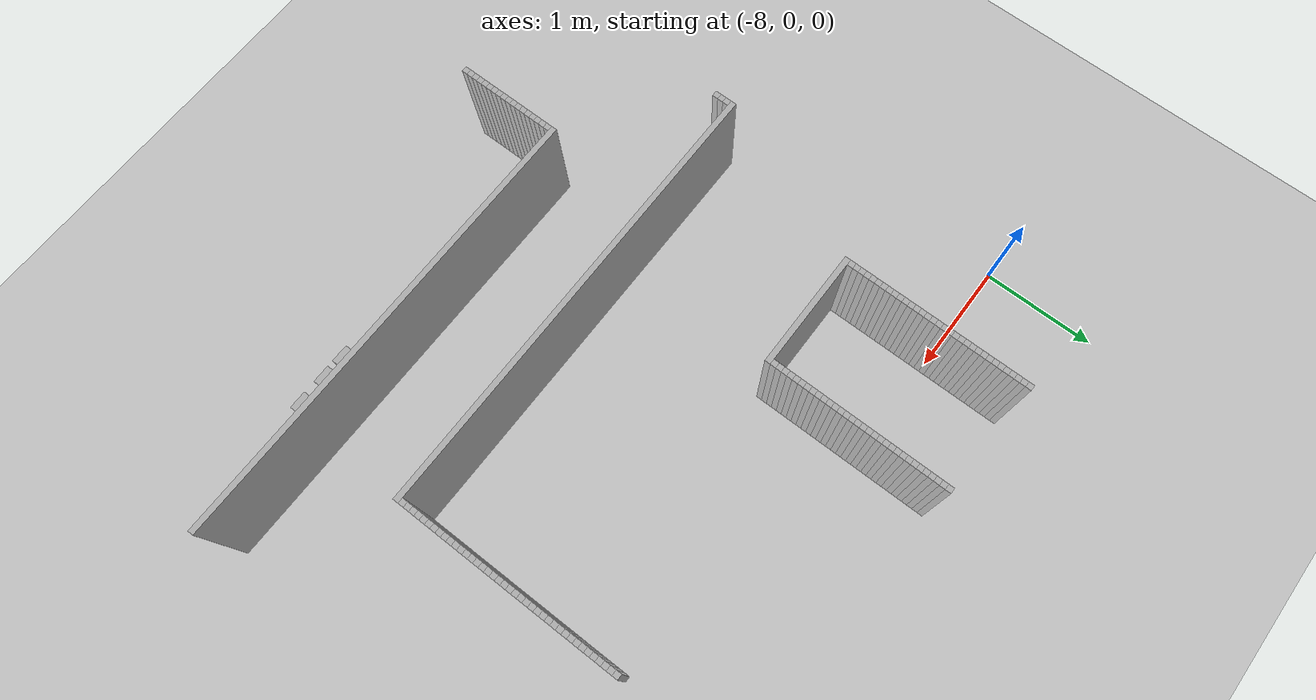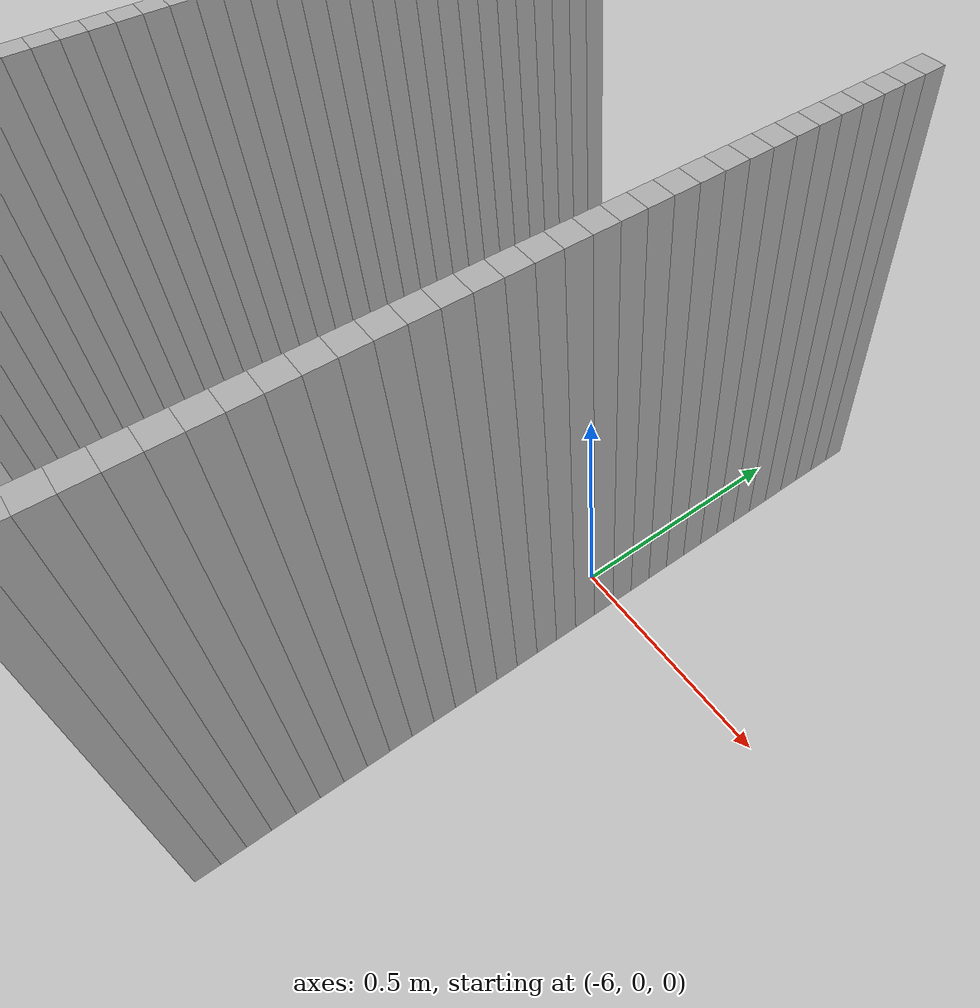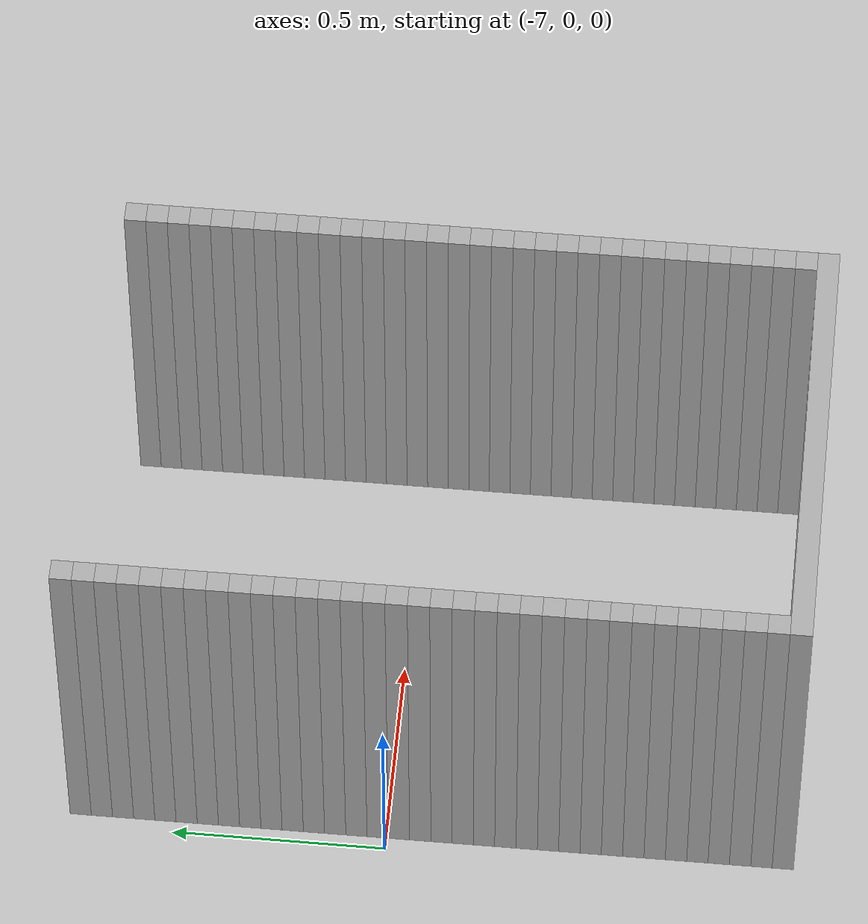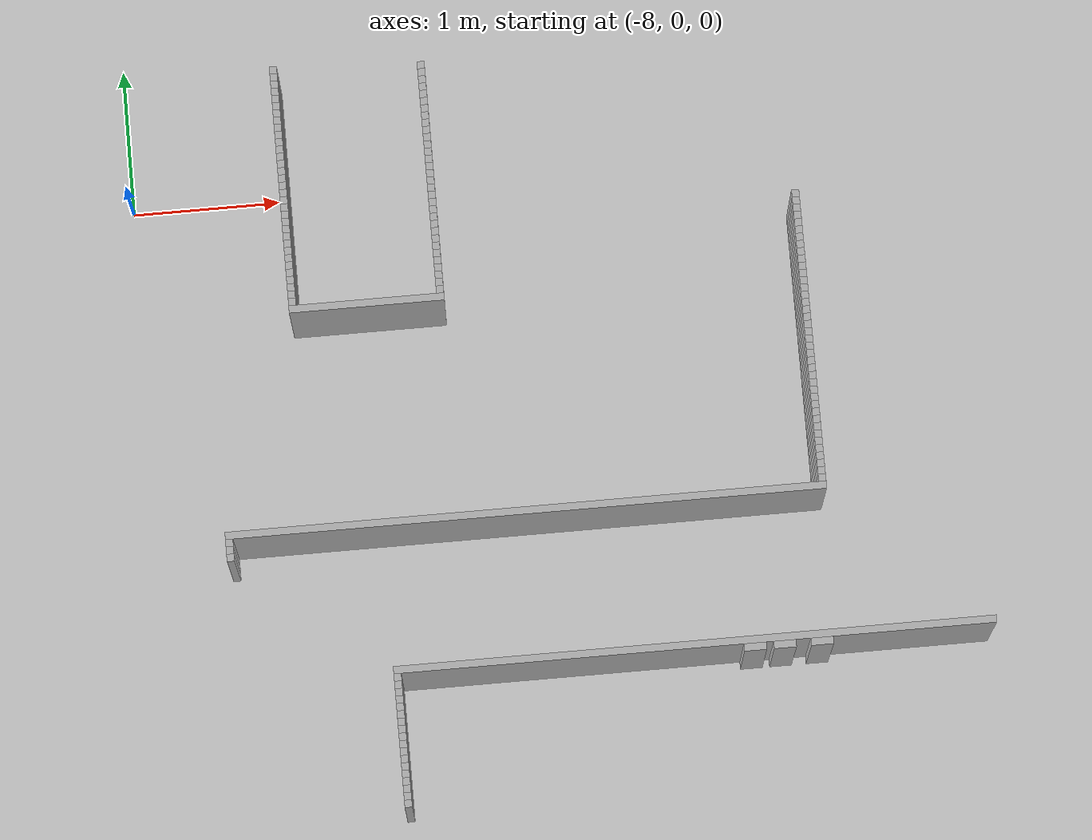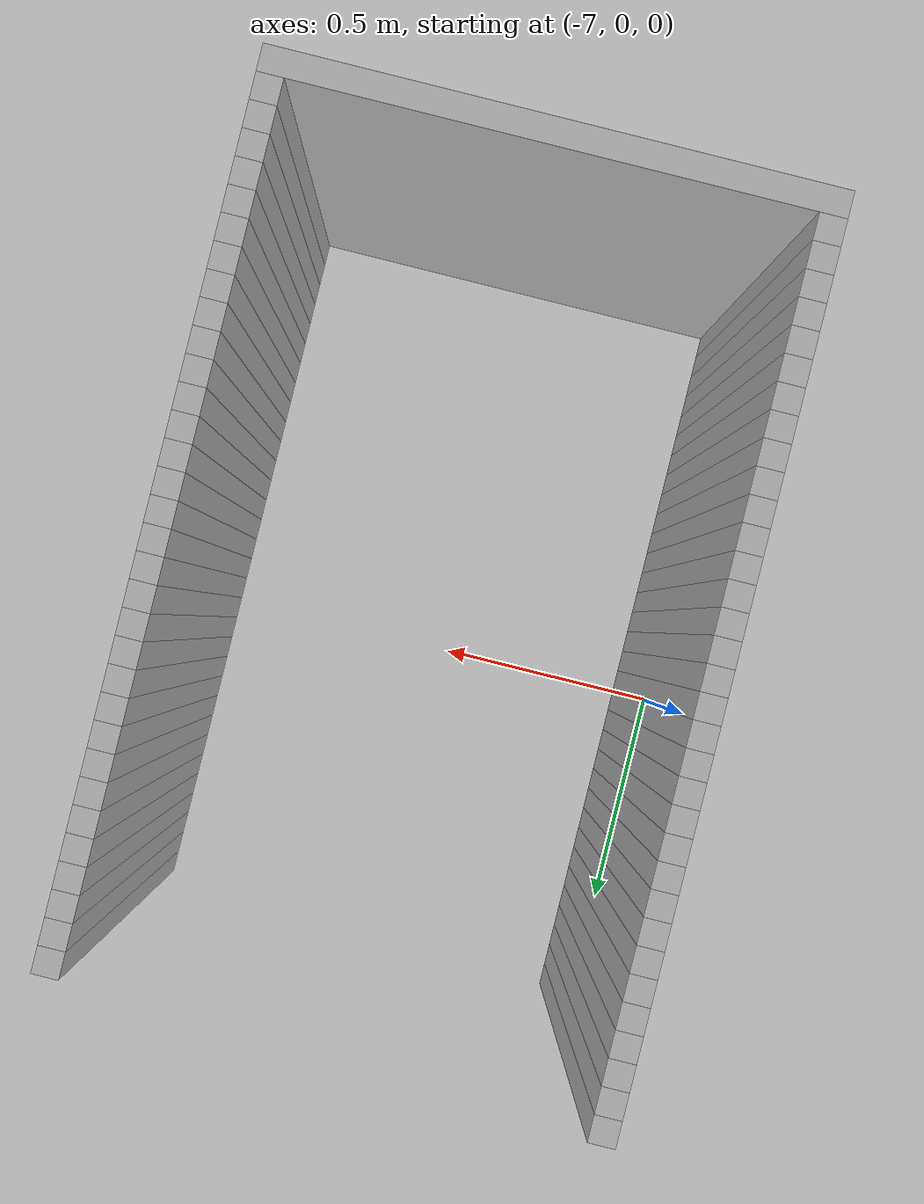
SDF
<sdf version="1.6">
 <world name="udh1_world">
  <include><uri>model://ground_plane</uri></include>
  <include><uri>model://sun</uri></include>
  <model name="wall_1353">
   <static>true</static>
   <pose>-6.944999999999999 0.7200000000000006 0.5 0 0 0</pose>
   <link name="link">
    <collision name="col"><geometry><box><size>0.05 0.05 1</size></box></geometry></collision>
    <visual name="vis"><geometry><box><size>0.05 0.05 1</size></box></geometry></visual>
   </link>
  </model>
  <model name="wall_1361">
   <static>true</static>
   <pose>-6.944999999999999 0.6699999999999999 0.5 0 0 0</pose>
   <link name="link">
    <collision name="col"><geometry><box><size>0.05 0.05 1</size></box></geometry></collision>
    <visual name="vis"><geometry><box><size>0.05 0.05 1</size></box></geometry></visual>
   </link>
  </model>
  <model name="wall_1362">
   <static>true</static>
   <pose>-5.944999999999999 0.6699999999999999 0.5 0 0 0</pose>
   <link name="link">
    <collision name="col"><geometry><box><size>0.05 0.05 1</size></box></geometry></collision>
    <visual name="vis"><geometry><box><size>0.05 0.05 1</size></box></geometry></visual>
   </link>
  </model>
  <model name="wall_1369">
   <static>true</static>
   <pose>-6.944999999999999 0.6199999999999992 0.5 0 0 0</pose>
   <link name="link">
    <collision name="col"><geometry><box><size>0.05 0.05 1</size></box></geometry></collision>
    <visual name="vis"><geometry><box><size>0.05 0.05 1</size></box></geometry></visual>
   </link>
  </model>
  <model name="wall_1370">
   <static>true</static>
   <pose>-5.944999999999999 0.6199999999999992 0.5 0 0 0</pose>
   <link name="link">
    <collision name="col"><geometry><box><size>0.05 0.05 1</size></box></geometry></collision>
    <visual name="vis"><geometry><box><size>0.05 0.05 1</size></box></geometry></visual>
   </link>
  </model>
  <model name="wall_1376">
   <static>true</static>
   <pose>-6.944999999999999 0.5700000000000003 0.5 0 0 0</pose>
   <link name="link">
    <collision name="col"><geometry><box><size>0.05 0.05 1</size></box></geometry></collision>
    <visual name="vis"><geometry><box><size>0.05 0.05 1</size></box></geometry></visual>
   </link>
  </model>
  <model name="wall_1377">
   <static>true</static>
   <pose>-5.944999999999999 0.5700000000000003 0.5 0 0 0</pose>
   <link name="link">
    <collision name="col"><geometry><box><size>0.05 0.05 1</size></box></geometry></collision>
    <visual name="vis"><geometry><box><size>0.05 0.05 1</size></box></geometry></visual>
   </link>
  </model>
  <model name="wall_1383">
   <static>true</static>
   <pose>-6.944999999999999 0.5199999999999996 0.5 0 0 0</pose>
   <link name="link">
    <collision name="col"><geometry><box><size>0.05 0.05 1</size></box></geometry></collision>
    <visual name="vis"><geometry><box><size>0.05 0.05 1</size></box></geometry></visual>
   </link>
  </model>
  <model name="wall_1384">
   <static>true</static>
   <pose>-5.944999999999999 0.5199999999999996 0.5 0 0 0</pose>
   <link name="link">
    <collision name="col"><geometry><box><size>0.05 0.05 1</size></box></geometry></collision>
    <visual name="vis"><geometry><box><size>0.05 0.05 1</size></box></geometry></visual>
   </link>
  </model>
  <model name="wall_1389">
   <static>true</static>
   <pose>-6.944999999999999 0.47000000000000064 0.5 0 0 0</pose>
   <link name="link">
    <collision name="col"><geometry><box><size>0.05 0.05 1</size></box></geometry></collision>
    <visual name="vis"><geometry><box><size>0.05 0.05 1</size></box></geometry></visual>
   </link>
  </model>
  <model name="wall_1390">
   <static>true</static>
   <pose>-5.944999999999999 0.47000000000000064 0.5 0 0 0</pose>
   <link name="link">
    <collision name="col"><geometry><box><size>0.05 0.05 1</size></box></geometry></collision>
    <visual name="vis"><geometry><box><size>0.05 0.05 1</size></box></geometry></visual>
   </link>
  </model>
  <model name="wall_1396">
   <static>true</static>
   <pose>-6.944999999999999 0.41999999999999993 0.5 0 0 0</pose>
   <link name="link">
    <collision name="col"><geometry><box><size>0.05 0.05 1</size></box></geometry></collision>
    <visual name="vis"><geometry><box><size>0.05 0.05 1</size></box></geometry></visual>
   </link>
  </model>
  <model name="wall_1397">
   <static>true</static>
   <pose>-5.944999999999999 0.41999999999999993 0.5 0 0 0</pose>
   <link name="link">
    <collision name="col"><geometry><box><size>0.05 0.05 1</size></box></geometry></collision>
    <visual name="vis"><geometry><box><size>0.05 0.05 1</size></box></geometry></visual>
   </link>
  </model>
  <model name="wall_1403">
   <static>true</static>
   <pose>-6.944999999999999 0.3699999999999992 0.5 0 0 0</pose>
   <link name="link">
    <collision name="col"><geometry><box><size>0.05 0.05 1</size></box></geometry></collision>
    <visual name="vis"><geometry><box><size>0.05 0.05 1</size></box></geometry></visual>
   </link>
  </model>
  <model name="wall_1404">
   <static>true</static>
   <pose>-5.944999999999999 0.3699999999999992 0.5 0 0 0</pose>
   <link name="link">
    <collision name="col"><geometry><box><size>0.05 0.05 1</size></box></geometry></collision>
    <visual name="vis"><geometry><box><size>0.05 0.05 1</size></box></geometry></visual>
   </link>
  </model>
  <model name="wall_1410">
   <static>true</static>
   <pose>-6.944999999999999 0.3200000000000003 0.5 0 0 0</pose>
   <link name="link">
    <collision name="col"><geometry><box><size>0.05 0.05 1</size></box></geometry></collision>
    <visual name="vis"><geometry><box><size>0.05 0.05 1</size></box></geometry></visual>
   </link>
  </model>
  <model name="wall_1411">
   <static>true</static>
   <pose>-5.944999999999999 0.3200000000000003 0.5 0 0 0</pose>
   <link name="link">
    <collision name="col"><geometry><box><size>0.05 0.05 1</size></box></geometry></collision>
    <visual name="vis"><geometry><box><size>0.05 0.05 1</size></box></geometry></visual>
   </link>
  </model>
  <model name="wall_1417">
   <static>true</static>
   <pose>-6.944999999999999 0.2699999999999996 0.5 0 0 0</pose>
   <link name="link">
    <collision name="col"><geometry><box><size>0.05 0.05 1</size></box></geometry></collision>
    <visual name="vis"><geometry><box><size>0.05 0.05 1</size></box></geometry></visual>
   </link>
  </model>
  <model name="wall_1418">
   <static>true</static>
   <pose>-5.944999999999999 0.2699999999999996 0.5 0 0 0</pose>
   <link name="link">
    <collision name="col"><geometry><box><size>0.05 0.05 1</size></box></geometry></collision>
    <visual name="vis"><geometry><box><size>0.05 0.05 1</size></box></geometry></visual>
   </link>
  </model>
  <model name="wall_1424">
   <static>true</static>
   <pose>-6.944999999999999 0.21999999999999886 0.5 0 0 0</pose>
   <link name="link">
    <collision name="col"><geometry><box><size>0.05 0.05 1</size></box></geometry></collision>
    <visual name="vis"><geometry><box><size>0.05 0.05 1</size></box></geometry></visual>
   </link>
  </model>
  <model name="wall_1425">
   <static>true</static>
   <pose>-5.944999999999999 0.21999999999999886 0.5 0 0 0</pose>
   <link name="link">
    <collision name="col"><geometry><box><size>0.05 0.05 1</size></box></geometry></collision>
    <visual name="vis"><geometry><box><size>0.05 0.05 1</size></box></geometry></visual>
   </link>
  </model>
  <model name="wall_1431">
   <static>true</static>
   <pose>-6.944999999999999 0.16999999999999993 0.5 0 0 0</pose>
   <link name="link">
    <collision name="col"><geometry><box><size>0.05 0.05 1</size></box></geometry></collision>
    <visual name="vis"><geometry><box><size>0.05 0.05 1</size></box></geometry></visual>
   </link>
  </model>
  <model name="wall_1432">
   <static>true</static>
   <pose>-5.944999999999999 0.16999999999999993 0.5 0 0 0</pose>
   <link name="link">
    <collision name="col"><geometry><box><size>0.05 0.05 1</size></box></geometry></collision>
    <visual name="vis"><geometry><box><size>0.05 0.05 1</size></box></geometry></visual>
   </link>
  </model>
  <model name="wall_1438">
   <static>true</static>
   <pose>-6.944999999999999 0.11999999999999922 0.5 0 0 0</pose>
   <link name="link">
    <collision name="col"><geometry><box><size>0.05 0.05 1</size></box></geometry></collision>
    <visual name="vis"><geometry><box><size>0.05 0.05 1</size></box></geometry></visual>
   </link>
  </model>
  <model name="wall_1439">
   <static>true</static>
   <pose>-5.944999999999999 0.11999999999999922 0.5 0 0 0</pose>
   <link name="link">
    <collision name="col"><geometry><box><size>0.05 0.05 1</size></box></geometry></collision>
    <visual name="vis"><geometry><box><size>0.05 0.05 1</size></box></geometry></visual>
   </link>
  </model>
  <model name="wall_1445">
   <static>true</static>
   <pose>-6.944999999999999 0.07000000000000028 0.5 0 0 0</pose>
   <link name="link">
    <collision name="col"><geometry><box><size>0.05 0.05 1</size></box></geometry></collision>
    <visual name="vis"><geometry><box><size>0.05 0.05 1</size></box></geometry></visual>
   </link>
  </model>
  <model name="wall_1446">
   <static>true</static>
   <pose>-5.944999999999999 0.07000000000000028 0.5 0 0 0</pose>
   <link name="link">
    <collision name="col"><geometry><box><size>0.05 0.05 1</size></box></geometry></collision>
    <visual name="vis"><geometry><box><size>0.05 0.05 1</size></box></geometry></visual>
   </link>
  </model>
  <model name="wall_1454">
   <static>true</static>
   <pose>-6.944999999999999 0.019999999999999574 0.5 0 0 0</pose>
   <link name="link">
    <collision name="col"><geometry><box><size>0.05 0.05 1</size></box></geometry></collision>
    <visual name="vis"><geometry><box><size>0.05 0.05 1</size></box></geometry></visual>
   </link>
  </model>
  <model name="wall_1455">
   <static>true</static>
   <pose>-5.944999999999999 0.019999999999999574 0.5 0 0 0</pose>
   <link name="link">
    <collision name="col"><geometry><box><size>0.05 0.05 1</size></box></geometry></collision>
    <visual name="vis"><geometry><box><size>0.05 0.05 1</size></box></geometry></visual>
   </link>
  </model>
  <model name="wall_1469">
   <static>true</static>
   <pose>-6.944999999999999 -0.030000000000001137 0.5 0 0 0</pose>
   <link name="link">
    <collision name="col"><geometry><box><size>0.05 0.05 1</size></box></geometry></collision>
    <visual name="vis"><geometry><box><size>0.05 0.05 1</size></box></geometry></visual>
   </link>
  </model>
  <model name="wall_1470">
   <static>true</static>
   <pose>-5.944999999999999 -0.030000000000001137 0.5 0 0 0</pose>
   <link name="link">
    <collision name="col"><geometry><box><size>0.05 0.05 1</size></box></geometry></collision>
    <visual name="vis"><geometry><box><size>0.05 0.05 1</size></box></geometry></visual>
   </link>
  </model>
  <model name="wall_1476">
   <static>true</static>
   <pose>-6.944999999999999 -0.08000000000000007 0.5 0 0 0</pose>
   <link name="link">
    <collision name="col"><geometry><box><size>0.05 0.05 1</size></box></geometry></collision>
    <visual name="vis"><geometry><box><size>0.05 0.05 1</size></box></geometry></visual>
   </link>
  </model>
  <model name="wall_1477">
   <static>true</static>
   <pose>-5.944999999999999 -0.08000000000000007 0.5 0 0 0</pose>
   <link name="link">
    <collision name="col"><geometry><box><size>0.05 0.05 1</size></box></geometry></collision>
    <visual name="vis"><geometry><box><size>0.05 0.05 1</size></box></geometry></visual>
   </link>
  </model>
  <model name="wall_1483">
   <static>true</static>
   <pose>-6.944999999999999 -0.13000000000000078 0.5 0 0 0</pose>
   <link name="link">
    <collision name="col"><geometry><box><size>0.05 0.05 1</size></box></geometry></collision>
    <visual name="vis"><geometry><box><size>0.05 0.05 1</size></box></geometry></visual>
   </link>
  </model>
  <model name="wall_1484">
   <static>true</static>
   <pose>-5.944999999999999 -0.13000000000000078 0.5 0 0 0</pose>
   <link name="link">
    <collision name="col"><geometry><box><size>0.05 0.05 1</size></box></geometry></collision>
    <visual name="vis"><geometry><box><size>0.05 0.05 1</size></box></geometry></visual>
   </link>
  </model>
  <model name="wall_1489">
   <static>true</static>
   <pose>-6.944999999999999 -0.17999999999999972 0.5 0 0 0</pose>
   <link name="link">
    <collision name="col"><geometry><box><size>0.05 0.05 1</size></box></geometry></collision>
    <visual name="vis"><geometry><box><size>0.05 0.05 1</size></box></geometry></visual>
   </link>
  </model>
  <model name="wall_1490">
   <static>true</static>
   <pose>-5.944999999999999 -0.17999999999999972 0.5 0 0 0</pose>
   <link name="link">
    <collision name="col"><geometry><box><size>0.05 0.05 1</size></box></geometry></collision>
    <visual name="vis"><geometry><box><size>0.05 0.05 1</size></box></geometry></visual>
   </link>
  </model>
  <model name="wall_1495">
   <static>true</static>
   <pose>-6.944999999999999 -0.23000000000000043 0.5 0 0 0</pose>
   <link name="link">
    <collision name="col"><geometry><box><size>0.05 0.05 1</size></box></geometry></collision>
    <visual name="vis"><geometry><box><size>0.05 0.05 1</size></box></geometry></visual>
   </link>
  </model>
  <model name="wall_1496">
   <static>true</static>
   <pose>-5.944999999999999 -0.23000000000000043 0.5 0 0 0</pose>
   <link name="link">
    <collision name="col"><geometry><box><size>0.05 0.05 1</size></box></geometry></collision>
    <visual name="vis"><geometry><box><size>0.05 0.05 1</size></box></geometry></visual>
   </link>
  </model>
  <model name="wall_1500">
   <static>true</static>
   <pose>-6.944999999999999 -0.28000000000000114 0.5 0 0 0</pose>
   <link name="link">
    <collision name="col"><geometry><box><size>0.05 0.05 1</size></box></geometry></collision>
    <visual name="vis"><geometry><box><size>0.05 0.05 1</size></box></geometry></visual>
   </link>
  </model>
  <model name="wall_1501">
   <static>true</static>
   <pose>-5.944999999999999 -0.28000000000000114 0.5 0 0 0</pose>
   <link name="link">
    <collision name="col"><geometry><box><size>0.05 0.05 1</size></box></geometry></collision>
    <visual name="vis"><geometry><box><size>0.05 0.05 1</size></box></geometry></visual>
   </link>
  </model>
  <model name="wall_1506">
   <static>true</static>
   <pose>-6.944999999999999 -0.33000000000000007 0.5 0 0 0</pose>
   <link name="link">
    <collision name="col"><geometry><box><size>0.05 0.05 1</size></box></geometry></collision>
    <visual name="vis"><geometry><box><size>0.05 0.05 1</size></box></geometry></visual>
   </link>
  </model>
  <model name="wall_1507">
   <static>true</static>
   <pose>-5.944999999999999 -0.33000000000000007 0.5 0 0 0</pose>
   <link name="link">
    <collision name="col"><geometry><box><size>0.05 0.05 1</size></box></geometry></collision>
    <visual name="vis"><geometry><box><size>0.05 0.05 1</size></box></geometry></visual>
   </link>
  </model>
  <model name="wall_1512">
   <static>true</static>
   <pose>-6.944999999999999 -0.3800000000000008 0.5 0 0 0</pose>
   <link name="link">
    <collision name="col"><geometry><box><size>0.05 0.05 1</size></box></geometry></collision>
    <visual name="vis"><geometry><box><size>0.05 0.05 1</size></box></geometry></visual>
   </link>
  </model>
  <model name="wall_1513">
   <static>true</static>
   <pose>-5.944999999999999 -0.3800000000000008 0.5 0 0 0</pose>
   <link name="link">
    <collision name="col"><geometry><box><size>0.05 0.05 1</size></box></geometry></collision>
    <visual name="vis"><geometry><box><size>0.05 0.05 1</size></box></geometry></visual>
   </link>
  </model>
  <model name="wall_1519">
   <static>true</static>
   <pose>-6.944999999999999 -0.4299999999999997 0.5 0 0 0</pose>
   <link name="link">
    <collision name="col"><geometry><box><size>0.05 0.05 1</size></box></geometry></collision>
    <visual name="vis"><geometry><box><size>0.05 0.05 1</size></box></geometry></visual>
   </link>
  </model>
  <model name="wall_1520">
   <static>true</static>
   <pose>-5.944999999999999 -0.4299999999999997 0.5 0 0 0</pose>
   <link name="link">
    <collision name="col"><geometry><box><size>0.05 0.05 1</size></box></geometry></collision>
    <visual name="vis"><geometry><box><size>0.05 0.05 1</size></box></geometry></visual>
   </link>
  </model>
  <model name="wall_1521">
   <static>true</static>
   <pose>-3.494999999999999 -0.4299999999999997 0.5 0 0 0</pose>
   <link name="link">
    <collision name="col"><geometry><box><size>0.05 0.05 1</size></box></geometry></collision>
    <visual name="vis"><geometry><box><size>0.05 0.05 1</size></box></geometry></visual>
   </link>
  </model>
  <model name="wall_1525">
   <static>true</static>
   <pose>-6.944999999999999 -0.4800000000000004 0.5 0 0 0</pose>
   <link name="link">
    <collision name="col"><geometry><box><size>0.05 0.05 1</size></box></geometry></collision>
    <visual name="vis"><geometry><box><size>0.05 0.05 1</size></box></geometry></visual>
   </link>
  </model>
  <model name="wall_1526">
   <static>true</static>
   <pose>-5.944999999999999 -0.4800000000000004 0.5 0 0 0</pose>
   <link name="link">
    <collision name="col"><geometry><box><size>0.05 0.05 1</size></box></geometry></collision>
    <visual name="vis"><geometry><box><size>0.05 0.05 1</size></box></geometry></visual>
   </link>
  </model>
  <model name="wall_1527">
   <static>true</static>
   <pose>-3.494999999999999 -0.4800000000000004 0.5 0 0 0</pose>
   <link name="link">
    <collision name="col"><geometry><box><size>0.05 0.05 1</size></box></geometry></collision>
    <visual name="vis"><geometry><box><size>0.05 0.05 1</size></box></geometry></visual>
   </link>
  </model>
  <model name="wall_1531">
   <static>true</static>
   <pose>-6.944999999999999 -0.5300000000000011 0.5 0 0 0</pose>
   <link name="link">
    <collision name="col"><geometry><box><size>0.05 0.05 1</size></box></geometry></collision>
    <visual name="vis"><geometry><box><size>0.05 0.05 1</size></box></geometry></visual>
   </link>
  </model>
  <model name="wall_1532">
   <static>true</static>
   <pose>-5.944999999999999 -0.5300000000000011 0.5 0 0 0</pose>
   <link name="link">
    <collision name="col"><geometry><box><size>0.05 0.05 1</size></box></geometry></collision>
    <visual name="vis"><geometry><box><size>0.05 0.05 1</size></box></geometry></visual>
   </link>
  </model>
  <model name="wall_1533">
   <static>true</static>
   <pose>-3.494999999999999 -0.5300000000000011 0.5 0 0 0</pose>
   <link name="link">
    <collision name="col"><geometry><box><size>0.05 0.05 1</size></box></geometry></collision>
    <visual name="vis"><geometry><box><size>0.05 0.05 1</size></box></geometry></visual>
   </link>
  </model>
  <model name="wall_1537">
   <static>true</static>
   <pose>-6.944999999999999 -0.5800000000000001 0.5 0 0 0</pose>
   <link name="link">
    <collision name="col"><geometry><box><size>0.05 0.05 1</size></box></geometry></collision>
    <visual name="vis"><geometry><box><size>0.05 0.05 1</size></box></geometry></visual>
   </link>
  </model>
  <model name="wall_1538">
   <static>true</static>
   <pose>-5.944999999999999 -0.5800000000000001 0.5 0 0 0</pose>
   <link name="link">
    <collision name="col"><geometry><box><size>0.05 0.05 1</size></box></geometry></collision>
    <visual name="vis"><geometry><box><size>0.05 0.05 1</size></box></geometry></visual>
   </link>
  </model>
  <model name="wall_1539">
   <static>true</static>
   <pose>-3.494999999999999 -0.5800000000000001 0.5 0 0 0</pose>
   <link name="link">
    <collision name="col"><geometry><box><size>0.05 0.05 1</size></box></geometry></collision>
    <visual name="vis"><geometry><box><size>0.05 0.05 1</size></box></geometry></visual>
   </link>
  </model>
  <model name="wall_1543">
   <static>true</static>
   <pose>-6.944999999999999 -0.6300000000000008 0.5 0 0 0</pose>
   <link name="link">
    <collision name="col"><geometry><box><size>0.05 0.05 1</size></box></geometry></collision>
    <visual name="vis"><geometry><box><size>0.05 0.05 1</size></box></geometry></visual>
   </link>
  </model>
  <model name="wall_1544">
   <static>true</static>
   <pose>-5.944999999999999 -0.6300000000000008 0.5 0 0 0</pose>
   <link name="link">
    <collision name="col"><geometry><box><size>0.05 0.05 1</size></box></geometry></collision>
    <visual name="vis"><geometry><box><size>0.05 0.05 1</size></box></geometry></visual>
   </link>
  </model>
  <model name="wall_1545">
   <static>true</static>
   <pose>-3.494999999999999 -0.6300000000000008 0.5 0 0 0</pose>
   <link name="link">
    <collision name="col"><geometry><box><size>0.05 0.05 1</size></box></geometry></collision>
    <visual name="vis"><geometry><box><size>0.05 0.05 1</size></box></geometry></visual>
   </link>
  </model>
  <model name="wall_1549">
   <static>true</static>
   <pose>-6.944999999999999 -0.6799999999999997 0.5 0 0 0</pose>
   <link name="link">
    <collision name="col"><geometry><box><size>0.05 0.05 1</size></box></geometry></collision>
    <visual name="vis"><geometry><box><size>0.05 0.05 1</size></box></geometry></visual>
   </link>
  </model>
  <model name="wall_1550">
   <static>true</static>
   <pose>-5.944999999999999 -0.6799999999999997 0.5 0 0 0</pose>
   <link name="link">
    <collision name="col"><geometry><box><size>0.05 0.05 1</size></box></geometry></collision>
    <visual name="vis"><geometry><box><size>0.05 0.05 1</size></box></geometry></visual>
   </link>
  </model>
  <model name="wall_1551">
   <static>true</static>
   <pose>-3.494999999999999 -0.6799999999999997 0.5 0 0 0</pose>
   <link name="link">
    <collision name="col"><geometry><box><size>0.05 0.05 1</size></box></geometry></collision>
    <visual name="vis"><geometry><box><size>0.05 0.05 1</size></box></geometry></visual>
   </link>
  </model>
  <model name="wall_1555">
   <static>true</static>
   <pose>-6.944999999999999 -0.7300000000000004 0.5 0 0 0</pose>
   <link name="link">
    <collision name="col"><geometry><box><size>0.05 0.05 1</size></box></geometry></collision>
    <visual name="vis"><geometry><box><size>0.05 0.05 1</size></box></geometry></visual>
   </link>
  </model>
  <model name="wall_1556">
   <static>true</static>
   <pose>-5.944999999999999 -0.7300000000000004 0.5 0 0 0</pose>
   <link name="link">
    <collision name="col"><geometry><box><size>0.05 0.05 1</size></box></geometry></collision>
    <visual name="vis"><geometry><box><size>0.05 0.05 1</size></box></geometry></visual>
   </link>
  </model>
  <model name="wall_1557">
   <static>true</static>
   <pose>-3.494999999999999 -0.7300000000000004 0.5 0 0 0</pose>
   <link name="link">
    <collision name="col"><geometry><box><size>0.05 0.05 1</size></box></geometry></collision>
    <visual name="vis"><geometry><box><size>0.05 0.05 1</size></box></geometry></visual>
   </link>
  </model>
  <model name="wall_1561">
   <static>true</static>
   <pose>-6.944999999999999 -0.7800000000000011 0.5 0 0 0</pose>
   <link name="link">
    <collision name="col"><geometry><box><size>0.05 0.05 1</size></box></geometry></collision>
    <visual name="vis"><geometry><box><size>0.05 0.05 1</size></box></geometry></visual>
   </link>
  </model>
  <model name="wall_1562">
   <static>true</static>
   <pose>-5.944999999999999 -0.7800000000000011 0.5 0 0 0</pose>
   <link name="link">
    <collision name="col"><geometry><box><size>0.05 0.05 1</size></box></geometry></collision>
    <visual name="vis"><geometry><box><size>0.05 0.05 1</size></box></geometry></visual>
   </link>
  </model>
  <model name="wall_1563">
   <static>true</static>
   <pose>-3.494999999999999 -0.7800000000000011 0.5 0 0 0</pose>
   <link name="link">
    <collision name="col"><geometry><box><size>0.05 0.05 1</size></box></geometry></collision>
    <visual name="vis"><geometry><box><size>0.05 0.05 1</size></box></geometry></visual>
   </link>
  </model>
  <model name="wall_1567">
   <static>true</static>
   <pose>-6.944999999999999 -0.8300000000000001 0.5 0 0 0</pose>
   <link name="link">
    <collision name="col"><geometry><box><size>0.05 0.05 1</size></box></geometry></collision>
    <visual name="vis"><geometry><box><size>0.05 0.05 1</size></box></geometry></visual>
   </link>
  </model>
  <model name="wall_1568">
   <static>true</static>
   <pose>-5.944999999999999 -0.8300000000000001 0.5 0 0 0</pose>
   <link name="link">
    <collision name="col"><geometry><box><size>0.05 0.05 1</size></box></geometry></collision>
    <visual name="vis"><geometry><box><size>0.05 0.05 1</size></box></geometry></visual>
   </link>
  </model>
  <model name="wall_1569">
   <static>true</static>
   <pose>-3.494999999999999 -0.8300000000000001 0.5 0 0 0</pose>
   <link name="link">
    <collision name="col"><geometry><box><size>0.05 0.05 1</size></box></geometry></collision>
    <visual name="vis"><geometry><box><size>0.05 0.05 1</size></box></geometry></visual>
   </link>
  </model>
  <model name="wall_1573">
   <static>true</static>
   <pose>-6.944999999999999 -0.8800000000000008 0.5 0 0 0</pose>
   <link name="link">
    <collision name="col"><geometry><box><size>0.05 0.05 1</size></box></geometry></collision>
    <visual name="vis"><geometry><box><size>0.05 0.05 1</size></box></geometry></visual>
   </link>
  </model>
  <model name="wall_1574">
   <static>true</static>
   <pose>-5.944999999999999 -0.8800000000000008 0.5 0 0 0</pose>
   <link name="link">
    <collision name="col"><geometry><box><size>0.05 0.05 1</size></box></geometry></collision>
    <visual name="vis"><geometry><box><size>0.05 0.05 1</size></box></geometry></visual>
   </link>
  </model>
  <model name="wall_1575">
   <static>true</static>
   <pose>-3.494999999999999 -0.8800000000000008 0.5 0 0 0</pose>
   <link name="link">
    <collision name="col"><geometry><box><size>0.05 0.05 1</size></box></geometry></collision>
    <visual name="vis"><geometry><box><size>0.05 0.05 1</size></box></geometry></visual>
   </link>
  </model>
  <model name="wall_1579">
   <static>true</static>
   <pose>-6.444999999999999 -0.9299999999999997 0.5 0 0 0</pose>
   <link name="link">
    <collision name="col"><geometry><box><size>1.05 0.05 1</size></box></geometry></collision>
    <visual name="vis"><geometry><box><size>1.05 0.05 1</size></box></geometry></visual>
   </link>
  </model>
  <model name="wall_1580">
   <static>true</static>
   <pose>-3.494999999999999 -0.9299999999999997 0.5 0 0 0</pose>
   <link name="link">
    <collision name="col"><geometry><box><size>0.05 0.05 1</size></box></geometry></collision>
    <visual name="vis"><geometry><box><size>0.05 0.05 1</size></box></geometry></visual>
   </link>
  </model>
  <model name="wall_1584">
   <static>true</static>
   <pose>-3.494999999999999 -0.9800000000000004 0.5 0 0 0</pose>
   <link name="link">
    <collision name="col"><geometry><box><size>0.05 0.05 1</size></box></geometry></collision>
    <visual name="vis"><geometry><box><size>0.05 0.05 1</size></box></geometry></visual>
   </link>
  </model>
  <model name="wall_1588">
   <static>true</static>
   <pose>-3.494999999999999 -1.0300000000000011 0.5 0 0 0</pose>
   <link name="link">
    <collision name="col"><geometry><box><size>0.05 0.05 1</size></box></geometry></collision>
    <visual name="vis"><geometry><box><size>0.05 0.05 1</size></box></geometry></visual>
   </link>
  </model>
  <model name="wall_1592">
   <static>true</static>
   <pose>-3.494999999999999 -1.08 0.5 0 0 0</pose>
   <link name="link">
    <collision name="col"><geometry><box><size>0.05 0.05 1</size></box></geometry></collision>
    <visual name="vis"><geometry><box><size>0.05 0.05 1</size></box></geometry></visual>
   </link>
  </model>
  <model name="wall_1596">
   <static>true</static>
   <pose>-3.494999999999999 -1.1300000000000008 0.5 0 0 0</pose>
   <link name="link">
    <collision name="col"><geometry><box><size>0.05 0.05 1</size></box></geometry></collision>
    <visual name="vis"><geometry><box><size>0.05 0.05 1</size></box></geometry></visual>
   </link>
  </model>
  <model name="wall_1600">
   <static>true</static>
   <pose>-3.494999999999999 -1.1800000000000006 0.5 0 0 0</pose>
   <link name="link">
    <collision name="col"><geometry><box><size>0.05 0.05 1</size></box></geometry></collision>
    <visual name="vis"><geometry><box><size>0.05 0.05 1</size></box></geometry></visual>
   </link>
  </model>
  <model name="wall_1604">
   <static>true</static>
   <pose>-3.494999999999999 -1.2300000000000004 0.5 0 0 0</pose>
   <link name="link">
    <collision name="col"><geometry><box><size>0.05 0.05 1</size></box></geometry></collision>
    <visual name="vis"><geometry><box><size>0.05 0.05 1</size></box></geometry></visual>
   </link>
  </model>
  <model name="wall_1608">
   <static>true</static>
   <pose>-3.494999999999999 -1.2800000000000002 0.5 0 0 0</pose>
   <link name="link">
    <collision name="col"><geometry><box><size>0.05 0.05 1</size></box></geometry></collision>
    <visual name="vis"><geometry><box><size>0.05 0.05 1</size></box></geometry></visual>
   </link>
  </model>
  <model name="wall_1612">
   <static>true</static>
   <pose>-3.494999999999999 -1.33 0.5 0 0 0</pose>
   <link name="link">
    <collision name="col"><geometry><box><size>0.05 0.05 1</size></box></geometry></collision>
    <visual name="vis"><geometry><box><size>0.05 0.05 1</size></box></geometry></visual>
   </link>
  </model>
  <model name="wall_1616">
   <static>true</static>
   <pose>-3.494999999999999 -1.3800000000000008 0.5 0 0 0</pose>
   <link name="link">
    <collision name="col"><geometry><box><size>0.05 0.05 1</size></box></geometry></collision>
    <visual name="vis"><geometry><box><size>0.05 0.05 1</size></box></geometry></visual>
   </link>
  </model>
  <model name="wall_1620">
   <static>true</static>
   <pose>-3.494999999999999 -1.4300000000000006 0.5 0 0 0</pose>
   <link name="link">
    <collision name="col"><geometry><box><size>0.05 0.05 1</size></box></geometry></collision>
    <visual name="vis"><geometry><box><size>0.05 0.05 1</size></box></geometry></visual>
   </link>
  </model>
  <model name="wall_1629">
   <static>true</static>
   <pose>-3.494999999999999 -1.4800000000000004 0.5 0 0 0</pose>
   <link name="link">
    <collision name="col"><geometry><box><size>0.05 0.05 1</size></box></geometry></collision>
    <visual name="vis"><geometry><box><size>0.05 0.05 1</size></box></geometry></visual>
   </link>
  </model>
  <model name="wall_1635">
   <static>true</static>
   <pose>-3.494999999999999 -1.5300000000000002 0.5 0 0 0</pose>
   <link name="link">
    <collision name="col"><geometry><box><size>0.05 0.05 1</size></box></geometry></collision>
    <visual name="vis"><geometry><box><size>0.05 0.05 1</size></box></geometry></visual>
   </link>
  </model>
  <model name="wall_1639">
   <static>true</static>
   <pose>-3.494999999999999 -1.58 0.5 0 0 0</pose>
   <link name="link">
    <collision name="col"><geometry><box><size>0.05 0.05 1</size></box></geometry></collision>
    <visual name="vis"><geometry><box><size>0.05 0.05 1</size></box></geometry></visual>
   </link>
  </model>
  <model name="wall_1643">
   <static>true</static>
   <pose>-3.494999999999999 -1.6300000000000008 0.5 0 0 0</pose>
   <link name="link">
    <collision name="col"><geometry><box><size>0.05 0.05 1</size></box></geometry></collision>
    <visual name="vis"><geometry><box><size>0.05 0.05 1</size></box></geometry></visual>
   </link>
  </model>
  <model name="wall_1647">
   <static>true</static>
   <pose>-3.494999999999999 -1.6800000000000006 0.5 0 0 0</pose>
   <link name="link">
    <collision name="col"><geometry><box><size>0.05 0.05 1</size></box></geometry></collision>
    <visual name="vis"><geometry><box><size>0.05 0.05 1</size></box></geometry></visual>
   </link>
  </model>
  <model name="wall_1651">
   <static>true</static>
   <pose>-3.494999999999999 -1.7300000000000004 0.5 0 0 0</pose>
   <link name="link">
    <collision name="col"><geometry><box><size>0.05 0.05 1</size></box></geometry></collision>
    <visual name="vis"><geometry><box><size>0.05 0.05 1</size></box></geometry></visual>
   </link>
  </model>
  <model name="wall_1655">
   <static>true</static>
   <pose>-3.494999999999999 -1.7800000000000002 0.5 0 0 0</pose>
   <link name="link">
    <collision name="col"><geometry><box><size>0.05 0.05 1</size></box></geometry></collision>
    <visual name="vis"><geometry><box><size>0.05 0.05 1</size></box></geometry></visual>
   </link>
  </model>
  <model name="wall_1659">
   <static>true</static>
   <pose>-3.494999999999999 -1.83 0.5 0 0 0</pose>
   <link name="link">
    <collision name="col"><geometry><box><size>0.05 0.05 1</size></box></geometry></collision>
    <visual name="vis"><geometry><box><size>0.05 0.05 1</size></box></geometry></visual>
   </link>
  </model>
  <model name="wall_1663">
   <static>true</static>
   <pose>-3.494999999999999 -1.8800000000000008 0.5 0 0 0</pose>
   <link name="link">
    <collision name="col"><geometry><box><size>0.05 0.05 1</size></box></geometry></collision>
    <visual name="vis"><geometry><box><size>0.05 0.05 1</size></box></geometry></visual>
   </link>
  </model>
  <model name="wall_1667">
   <static>true</static>
   <pose>-3.494999999999999 -1.9300000000000006 0.5 0 0 0</pose>
   <link name="link">
    <collision name="col"><geometry><box><size>0.05 0.05 1</size></box></geometry></collision>
    <visual name="vis"><geometry><box><size>0.05 0.05 1</size></box></geometry></visual>
   </link>
  </model>
  <model name="wall_1671">
   <static>true</static>
   <pose>-3.494999999999999 -1.9800000000000004 0.5 0 0 0</pose>
   <link name="link">
    <collision name="col"><geometry><box><size>0.05 0.05 1</size></box></geometry></collision>
    <visual name="vis"><geometry><box><size>0.05 0.05 1</size></box></geometry></visual>
   </link>
  </model>
  <model name="wall_1675">
   <static>true</static>
   <pose>-3.494999999999999 -2.0300000000000002 0.5 0 0 0</pose>
   <link name="link">
    <collision name="col"><geometry><box><size>0.05 0.05 1</size></box></geometry></collision>
    <visual name="vis"><geometry><box><size>0.05 0.05 1</size></box></geometry></visual>
   </link>
  </model>
  <model name="wall_1679">
   <static>true</static>
   <pose>-3.494999999999999 -2.08 0.5 0 0 0</pose>
   <link name="link">
    <collision name="col"><geometry><box><size>0.05 0.05 1</size></box></geometry></collision>
    <visual name="vis"><geometry><box><size>0.05 0.05 1</size></box></geometry></visual>
   </link>
  </model>
  <model name="wall_1683">
   <static>true</static>
   <pose>-3.494999999999999 -2.130000000000001 0.5 0 0 0</pose>
   <link name="link">
    <collision name="col"><geometry><box><size>0.05 0.05 1</size></box></geometry></collision>
    <visual name="vis"><geometry><box><size>0.05 0.05 1</size></box></geometry></visual>
   </link>
  </model>
  <model name="wall_1687">
   <static>true</static>
   <pose>-3.494999999999999 -2.1800000000000006 0.5 0 0 0</pose>
   <link name="link">
    <collision name="col"><geometry><box><size>0.05 0.05 1</size></box></geometry></collision>
    <visual name="vis"><geometry><box><size>0.05 0.05 1</size></box></geometry></visual>
   </link>
  </model>
  <model name="wall_1691">
   <static>true</static>
   <pose>-3.494999999999999 -2.2300000000000004 0.5 0 0 0</pose>
   <link name="link">
    <collision name="col"><geometry><box><size>0.05 0.05 1</size></box></geometry></collision>
    <visual name="vis"><geometry><box><size>0.05 0.05 1</size></box></geometry></visual>
   </link>
  </model>
  <model name="wall_1695">
   <static>true</static>
   <pose>-3.494999999999999 -2.2800000000000002 0.5 0 0 0</pose>
   <link name="link">
    <collision name="col"><geometry><box><size>0.05 0.05 1</size></box></geometry></collision>
    <visual name="vis"><geometry><box><size>0.05 0.05 1</size></box></geometry></visual>
   </link>
  </model>
  <model name="wall_1699">
   <static>true</static>
   <pose>-3.494999999999999 -2.33 0.5 0 0 0</pose>
   <link name="link">
    <collision name="col"><geometry><box><size>0.05 0.05 1</size></box></geometry></collision>
    <visual name="vis"><geometry><box><size>0.05 0.05 1</size></box></geometry></visual>
   </link>
  </model>
  <model name="wall_1703">
   <static>true</static>
   <pose>-3.494999999999999 -2.380000000000001 0.5 0 0 0</pose>
   <link name="link">
    <collision name="col"><geometry><box><size>0.05 0.05 1</size></box></geometry></collision>
    <visual name="vis"><geometry><box><size>0.05 0.05 1</size></box></geometry></visual>
   </link>
  </model>
  <model name="wall_1707">
   <static>true</static>
   <pose>-5.494999999999999 -2.4300000000000006 0.5 0 0 0</pose>
   <link name="link">
    <collision name="col"><geometry><box><size>4.05 0.05 1</size></box></geometry></collision>
    <visual name="vis"><geometry><box><size>4.05 0.05 1</size></box></geometry></visual>
   </link>
  </model>
  <model name="wall_1711">
   <static>true</static>
   <pose>-7.494999999999999 -2.4800000000000004 0.5 0 0 0</pose>
   <link name="link">
    <collision name="col"><geometry><box><size>0.05 0.05 1</size></box></geometry></collision>
    <visual name="vis"><geometry><box><size>0.05 0.05 1</size></box></geometry></visual>
   </link>
  </model>
  <model name="wall_1715">
   <static>true</static>
   <pose>-7.494999999999999 -2.5300000000000002 0.5 0 0 0</pose>
   <link name="link">
    <collision name="col"><geometry><box><size>0.05 0.05 1</size></box></geometry></collision>
    <visual name="vis"><geometry><box><size>0.05 0.05 1</size></box></geometry></visual>
   </link>
  </model>
  <model name="wall_1722">
   <static>true</static>
   <pose>-7.494999999999999 -2.58 0.5 0 0 0</pose>
   <link name="link">
    <collision name="col"><geometry><box><size>0.05 0.05 1</size></box></geometry></collision>
    <visual name="vis"><geometry><box><size>0.05 0.05 1</size></box></geometry></visual>
   </link>
  </model>
  <model name="wall_1824">
   <static>true</static>
   <pose>-4.444999999999999 -3.4300000000000006 0.5 0 0 0</pose>
   <link name="link">
    <collision name="col"><geometry><box><size>4.05 0.05 1</size></box></geometry></collision>
    <visual name="vis"><geometry><box><size>4.05 0.05 1</size></box></geometry></visual>
   </link>
  </model>
  <model name="wall_1830">
   <static>true</static>
   <pose>-6.444999999999999 -3.4800000000000004 0.5 0 0 0</pose>
   <link name="link">
    <collision name="col"><geometry><box><size>0.05 0.05 1</size></box></geometry></collision>
    <visual name="vis"><geometry><box><size>0.05 0.05 1</size></box></geometry></visual>
   </link>
  </model>
  <model name="wall_1831">
   <static>true</static>
   <pose>-4.044999999999999 -3.4800000000000004 0.5 0 0 0</pose>
   <link name="link">
    <collision name="col"><geometry><box><size>0.15000000000000002 0.05 1</size></box></geometry></collision>
    <visual name="vis"><geometry><box><size>0.15000000000000002 0.05 1</size></box></geometry></visual>
   </link>
  </model>
  <model name="wall_1832">
   <static>true</static>
   <pose>-3.844999999999999 -3.4800000000000004 0.5 0 0 0</pose>
   <link name="link">
    <collision name="col"><geometry><box><size>0.15000000000000002 0.05 1</size></box></geometry></collision>
    <visual name="vis"><geometry><box><size>0.15000000000000002 0.05 1</size></box></geometry></visual>
   </link>
  </model>
  <model name="wall_1833">
   <static>true</static>
   <pose>-3.594999999999999 -3.4800000000000004 0.5 0 0 0</pose>
   <link name="link">
    <collision name="col"><geometry><box><size>0.15000000000000002 0.05 1</size></box></geometry></collision>
    <visual name="vis"><geometry><box><size>0.15000000000000002 0.05 1</size></box></geometry></visual>
   </link>
  </model>
  <model name="wall_1844">
   <static>true</static>
   <pose>-6.444999999999999 -3.5300000000000002 0.5 0 0 0</pose>
   <link name="link">
    <collision name="col"><geometry><box><size>0.05 0.05 1</size></box></geometry></collision>
    <visual name="vis"><geometry><box><size>0.05 0.05 1</size></box></geometry></visual>
   </link>
  </model>
  <model name="wall_1850">
   <static>true</static>
   <pose>-6.444999999999999 -3.58 0.5 0 0 0</pose>
   <link name="link">
    <collision name="col"><geometry><box><size>0.05 0.05 1</size></box></geometry></collision>
    <visual name="vis"><geometry><box><size>0.05 0.05 1</size></box></geometry></visual>
   </link>
  </model>
  <model name="wall_1856">
   <static>true</static>
   <pose>-6.444999999999999 -3.630000000000001 0.5 0 0 0</pose>
   <link name="link">
    <collision name="col"><geometry><box><size>0.05 0.05 1</size></box></geometry></collision>
    <visual name="vis"><geometry><box><size>0.05 0.05 1</size></box></geometry></visual>
   </link>
  </model>
  <model name="wall_1862">
   <static>true</static>
   <pose>-6.444999999999999 -3.6800000000000006 0.5 0 0 0</pose>
   <link name="link">
    <collision name="col"><geometry><box><size>0.05 0.05 1</size></box></geometry></collision>
    <visual name="vis"><geometry><box><size>0.05 0.05 1</size></box></geometry></visual>
   </link>
  </model>
  <model name="wall_1868">
   <static>true</static>
   <pose>-6.444999999999999 -3.7300000000000004 0.5 0 0 0</pose>
   <link name="link">
    <collision name="col"><geometry><box><size>0.05 0.05 1</size></box></geometry></collision>
    <visual name="vis"><geometry><box><size>0.05 0.05 1</size></box></geometry></visual>
   </link>
  </model>
  <model name="wall_1874">
   <static>true</static>
   <pose>-6.444999999999999 -3.7800000000000002 0.5 0 0 0</pose>
   <link name="link">
    <collision name="col"><geometry><box><size>0.05 0.05 1</size></box></geometry></collision>
    <visual name="vis"><geometry><box><size>0.05 0.05 1</size></box></geometry></visual>
   </link>
  </model>
  <model name="wall_1880">
   <static>true</static>
   <pose>-6.444999999999999 -3.83 0.5 0 0 0</pose>
   <link name="link">
    <collision name="col"><geometry><box><size>0.05 0.05 1</size></box></geometry></collision>
    <visual name="vis"><geometry><box><size>0.05 0.05 1</size></box></geometry></visual>
   </link>
  </model>
  <model name="wall_1886">
   <static>true</static>
   <pose>-6.444999999999999 -3.880000000000001 0.5 0 0 0</pose>
   <link name="link">
    <collision name="col"><geometry><box><size>0.05 0.05 1</size></box></geometry></collision>
    <visual name="vis"><geometry><box><size>0.05 0.05 1</size></box></geometry></visual>
   </link>
  </model>
  <model name="wall_1892">
   <static>true</static>
   <pose>-6.444999999999999 -3.9300000000000006 0.5 0 0 0</pose>
   <link name="link">
    <collision name="col"><geometry><box><size>0.05 0.05 1</size></box></geometry></collision>
    <visual name="vis"><geometry><box><size>0.05 0.05 1</size></box></geometry></visual>
   </link>
  </model>
  <model name="wall_1899">
   <static>true</static>
   <pose>-6.444999999999999 -3.9800000000000004 0.5 0 0 0</pose>
   <link name="link">
    <collision name="col"><geometry><box><size>0.05 0.05 1</size></box></geometry></collision>
    <visual name="vis"><geometry><box><size>0.05 0.05 1</size></box></geometry></visual>
   </link>
  </model>
  <model name="wall_1908">
   <static>true</static>
   <pose>-6.444999999999999 -4.03 0.5 0 0 0</pose>
   <link name="link">
    <collision name="col"><geometry><box><size>0.05 0.05 1</size></box></geometry></collision>
    <visual name="vis"><geometry><box><size>0.05 0.05 1</size></box></geometry></visual>
   </link>
  </model>
  <model name="wall_1916">
   <static>true</static>
   <pose>-6.444999999999999 -4.08 0.5 0 0 0</pose>
   <link name="link">
    <collision name="col"><geometry><box><size>0.05 0.05 1</size></box></geometry></collision>
    <visual name="vis"><geometry><box><size>0.05 0.05 1</size></box></geometry></visual>
   </link>
  </model>
  <model name="wall_1924">
   <static>true</static>
   <pose>-6.444999999999999 -4.130000000000001 0.5 0 0 0</pose>
   <link name="link">
    <collision name="col"><geometry><box><size>0.05 0.05 1</size></box></geometry></collision>
    <visual name="vis"><geometry><box><size>0.05 0.05 1</size></box></geometry></visual>
   </link>
  </model>
  <model name="wall_1932">
   <static>true</static>
   <pose>-6.444999999999999 -4.180000000000001 0.5 0 0 0</pose>
   <link name="link">
    <collision name="col"><geometry><box><size>0.05 0.05 1</size></box></geometry></collision>
    <visual name="vis"><geometry><box><size>0.05 0.05 1</size></box></geometry></visual>
   </link>
  </model>
  <model name="wall_1940">
   <static>true</static>
   <pose>-6.444999999999999 -4.23 0.5 0 0 0</pose>
   <link name="link">
    <collision name="col"><geometry><box><size>0.05 0.05 1</size></box></geometry></collision>
    <visual name="vis"><geometry><box><size>0.05 0.05 1</size></box></geometry></visual>
   </link>
  </model>
  <model name="wall_1948">
   <static>true</static>
   <pose>-6.444999999999999 -4.28 0.5 0 0 0</pose>
   <link name="link">
    <collision name="col"><geometry><box><size>0.05 0.05 1</size></box></geometry></collision>
    <visual name="vis"><geometry><box><size>0.05 0.05 1</size></box></geometry></visual>
   </link>
  </model>
  <model name="wall_1956">
   <static>true</static>
   <pose>-6.444999999999999 -4.33 0.5 0 0 0</pose>
   <link name="link">
    <collision name="col"><geometry><box><size>0.05 0.05 1</size></box></geometry></collision>
    <visual name="vis"><geometry><box><size>0.05 0.05 1</size></box></geometry></visual>
   </link>
  </model>
 </world>
</sdf>
